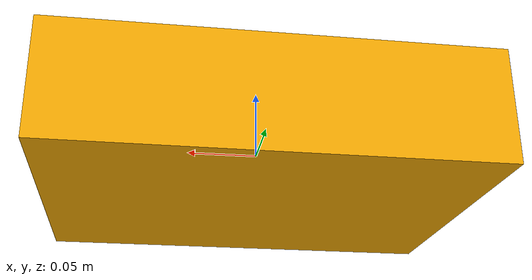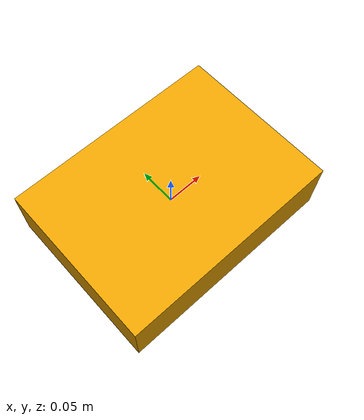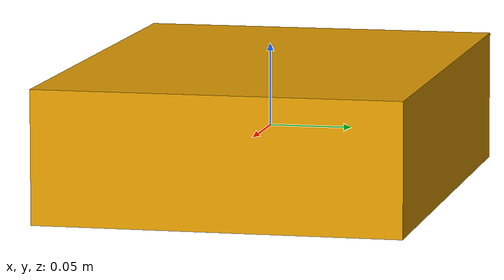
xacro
<?xml version="1.0"?>
<robot xmlns:xacro="http://www.ros.org/wiki/xacro" name="raccoon">

  <!-- TODO: measure the real chassis. Metres. -->
  <xacro:property name="base_length" value="0.30"/>
  <xacro:property name="base_width"  value="0.22"/>
  <xacro:property name="base_height" value="0.08"/>

  <!-- TODO: measure where the RPLIDAR A1 actually sits on the chassis. -->
  <xacro:property name="laser_xyz" value="0.0 0.0 0.10"/>

  <!-- Root frame. REP-103: x forward, y left, z up. -->
  <link name="base_link">
    <visual>
      <origin xyz="0 0 0" rpy="0 0 0"/>
      <geometry>
        <box size="${base_length} ${base_width} ${base_height}"/>
      </geometry>
    </visual>
    <collision>
      <origin xyz="0 0 0" rpy="0 0 0"/>
      <geometry>
        <box size="${base_length} ${base_width} ${base_height}"/>
      </geometry>
    </collision>
  </link>

  <!--
    Child link stub: the RPLIDAR A1 scan frame.
    Must match `frame_id` in raccoon_lidar/config/rplidar.yaml ("laser").
  -->
  <link name="laser"/>

  <joint name="base_link_to_laser" type="fixed">
    <parent link="base_link"/>
    <child link="laser"/>
    <origin xyz="${laser_xyz}" rpy="0 0 0"/>
  </joint>

</robot>
